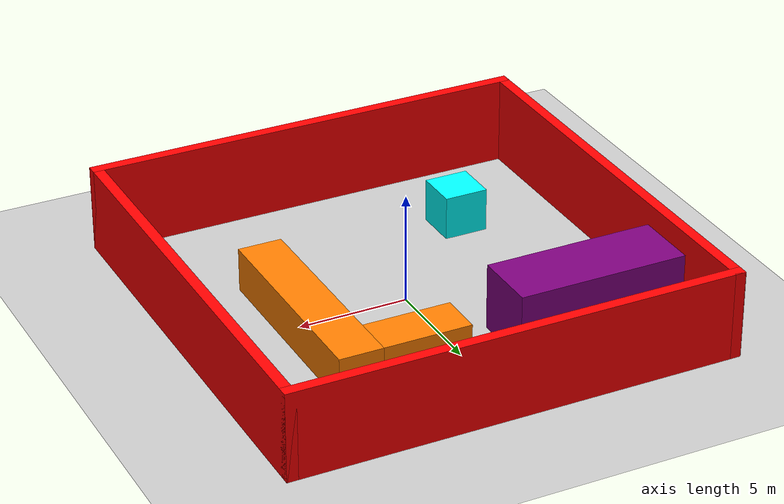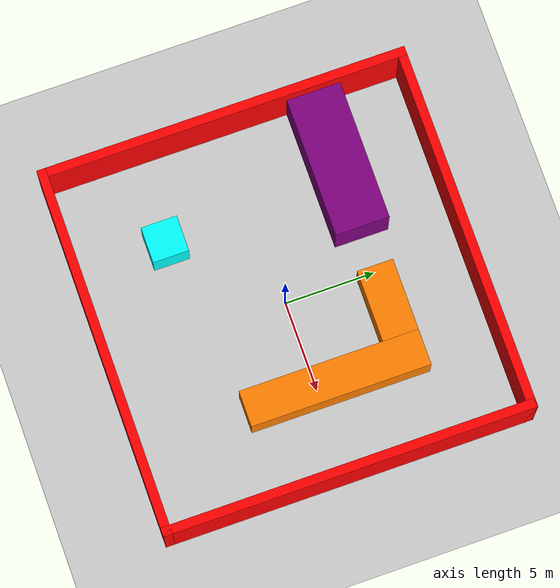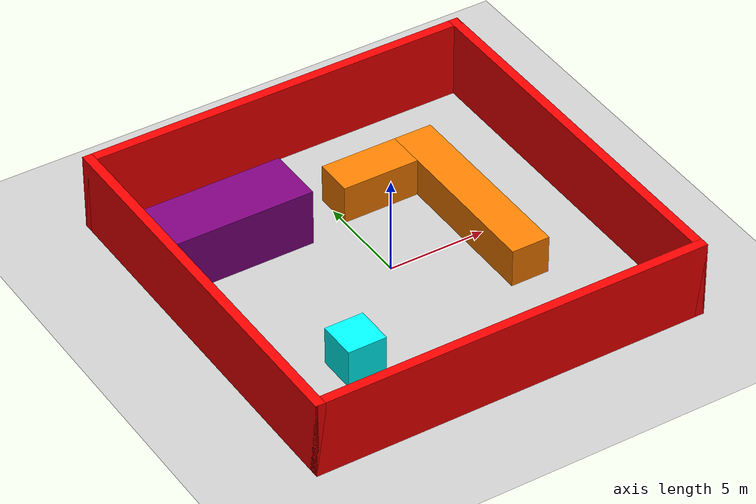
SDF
<?xml version="1.0" ?>
<sdf version="1.8">
    <world name="environment_only">
        <physics name="1ms" type="ignored">
            <max_step_size>0.001</max_step_size>
            <real_time_factor>1.0</real_time_factor>
        </physics>
        <plugin filename="gz-sim-physics-system" name="gz::sim::systems::Physics"></plugin>
        <plugin filename="gz-sim-user-commands-system" name="gz::sim::systems::UserCommands"></plugin>
        <plugin filename="gz-sim-scene-broadcaster-system" name="gz::sim::systems::SceneBroadcaster"></plugin>
        <plugin filename="gz-sim-sensors-system" name="gz::sim::systems::Sensors">
            <render_engine>ogre2</render_engine>
        </plugin>

        <plugin filename="gz-sim-contact-system" name="gz::sim::systems::Contact"></plugin>

        <gui fullscreen="0">
			<plugin filename="MinimalScene" name="3D View">
				<gz-gui>
					<title>3D View</title>
					<property type="bool" key="showTitleBar">false</property>
					<property type="string" key="state">docked</property>
				</gz-gui>
				<engine>ogre2</engine>
				<scene>scene</scene>
				<ambient_light>0.4 0.4 0.4</ambient_light>
				<background_color>0.8 0.8 0.8</background_color>
				<camera_pose>-6 0 6 0 0.5 0</camera_pose>
			</plugin>

			<plugin filename="GzSceneManager" name="Scene Manager"></plugin>
			<plugin filename="InteractiveViewControl" name="Interactive view control"></plugin>

          <plugin filename="VideoRecorder" name="VideoRecorder">
            <gz-gui>
              <property key="resizable" type="bool">false</property>
              <property key="x" type="double">300</property>
              <property key="y" type="double">50</property>
              <property key="width" type="double">50</property>
              <property key="height" type="double">50</property>
              <property key="state" type="string">floating</property>
              <property key="showTitleBar" type="bool">false</property>
              <property key="cardBackground" type="string">#777777</property>
            </gz-gui>

            <record_video>
              <use_sim_time>true</use_sim_time>
              <lockstep>false</lockstep>
              <bitrate>4000000</bitrate>
            </record_video>
          </plugin>

			<plugin filename="WorldControl" name="World control">
				<gz-gui>
					<title>World control</title>
					<property type="bool" key="showTitleBar">false</property>
					<property type="string" key="state">docked</property>
				</gz-gui>
				<play_pause>true</play_pause>
				<step>true</step>
				<start_paused>false</start_paused>
			</plugin>
		</gui>

        <light type="directional" name="sun">
            <cast_shadows>true</cast_shadows>
            <pose>0 0 10 0 0 0</pose>
            <diffuse>0.8 0.8 0.8 1</diffuse>
            <specular>0.2 0.2 0.2 1</specular>
            <attenuation>
                <range>1000</range>
                <constant>0.9</constant>
                <linear>0.01</linear>
                <quadratic>0.001</quadratic>
            </attenuation>
            <direction>-0.5 0.1 -0.9</direction>
        </light>

        <model name="ground_plane">
            <static>true</static>
            <link name="link">
                <collision name="collision">
                    <geometry><plane><normal>0 0 1</normal></plane></geometry>
                </collision>
                <visual name="visual">
                    <geometry><plane><normal>0 0 1</normal><size>100 100</size></plane></geometry>
                    <material>
                        <ambient>0.8 0.8 0.8 1</ambient>
                        <diffuse>0.8 0.8 0.8 1</diffuse>
                        <specular>0.8 0.8 0.8 1</specular>
                    </material>
                </visual>
            </link>
        </model>

        <model name='arena_walls'>
            <static>true</static>
            <pose>0 0 0 0 0 0</pose>
            <link name='walls_link'>
                <collision name='collision_n'>
                    <pose>0 10 2.0 0 0 0</pose>
                    <geometry><box><size>20.5 0.5 4.0</size></box></geometry>
                </collision>
                <visual name='visual_n'>
                    <pose>0 10 2.0 0 0 0</pose>
                    <geometry><box><size>20.5 0.5 4.0</size></box></geometry>
                    <material><ambient>1 0 0 1</ambient><diffuse>1 0 0 1</diffuse></material>
                </visual>
                <collision name='collision_s'>
                    <pose>0 -10 2.0 0 0 0</pose>
                    <geometry><box><size>20.5 0.5 4.0</size></box></geometry>
                </collision>
                <visual name='visual_s'>
                    <pose>0 -10 2.0 0 0 0</pose>
                    <geometry><box><size>20.5 0.5 4.0</size></box></geometry>
                    <material><ambient>1 0 0 1</ambient><diffuse>1 0 0 1</diffuse></material>
                </visual>
                <collision name='collision_e'>
                    <pose>10 0 2.0 0 0 0</pose>
                    <geometry><box><size>0.5 20.5 4.0</size></box></geometry>
                </collision>
                <visual name='visual_e'>
                    <pose>10 0 2.0 0 0 0</pose>
                    <geometry><box><size>0.5 20.5 4.0</size></box></geometry>
                    <material><ambient>1 0 0 1</ambient><diffuse>1 0 0 1</diffuse></material>
                </visual>
                <collision name='collision_w'>
                    <pose>-10 0 2.0 0 0 0</pose>
                    <geometry><box><size>0.5 20.5 4.0</size></box></geometry>
                </collision>
                <visual name='visual_w'>
                    <pose>-10 0 2.0 0 0 0</pose>
                    <geometry><box><size>0.5 20.5 4.0</size></box></geometry>
                    <material><ambient>1 0 0 1</ambient><diffuse>1 0 0 1</diffuse></material>
                </visual>
            </link>
        </model>

        <model name='massive_obstacles'>
            <static>true</static>
            <link name='link'>
                <collision name='cube_1_vertical_col'>
                    <pose>5 1.0 1.0 0 0 0</pose> <geometry><box><size>2 10 2</size></box></geometry> </collision>
                <visual name='cube_1_vertical_vis'>
                    <pose>5 1.0 1.0 0 0 0</pose>
                    <geometry><box><size>2 10 2</size></box></geometry>
                    <material><ambient>1 0.5 0 1</ambient><diffuse>1 0.5 0 1</diffuse></material>
                </visual>
                <collision name='cube_1_horizontal_col'>
                    <pose>2 5 1.0 0 0 0</pose> <geometry><box><size>4 2 2</size></box></geometry> </collision>
                <visual name='cube_1_horizontal_vis'>
                    <pose>2 5 1.0 0 0 0</pose>
                    <geometry><box><size>4 2 2</size></box></geometry>
                    <material><ambient>1 0.5 0 1</ambient><diffuse>1 0.5 0 1</diffuse></material>
                </visual>

                <collision name='cube_2_col'>
                    <pose>-5 -5 1.0 0 0 0</pose>
                    <geometry><box><size>2 2 2</size></box></geometry>
                </collision>
                <visual name='cube_2_vis'>
                    <pose>-5 -5 1.0 0 0 0</pose>
                    <geometry><box><size>2 2 2</size></box></geometry>
                    <material><ambient>0 1 1 1</ambient><diffuse>0 1 1 1</diffuse></material>
                </visual>

                <collision name='cube_4_col'>
                    <pose>-6 5 1.5 0 0 0</pose> <geometry><box><size>8 3 3</size></box></geometry> </collision>
                <visual name='cube_4_vis'>
                    <pose>-6 5 1.5 0 0 0</pose>
                    <geometry><box><size>8 3 3</size></box></geometry>
                    <material><ambient>0.5 0 0.5 1</ambient><diffuse>0.5 0 0.5 1</diffuse></material>
                </visual>
            </link>
        </model>
    </world>
</sdf>
